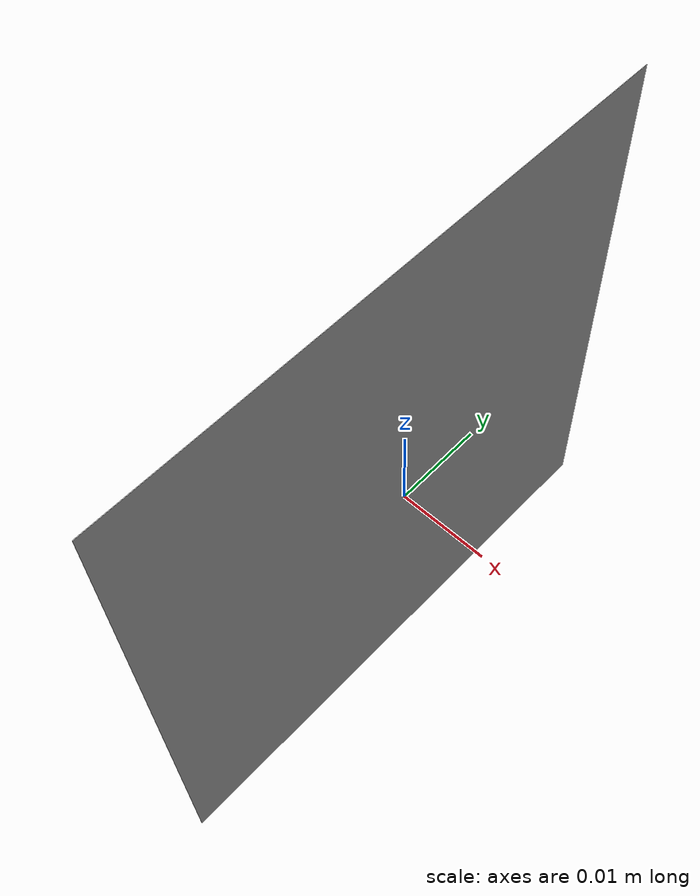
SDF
<?xml version="1.0"?>
<sdf version="1.6">

  <model name="aruco_10">

    <static>true</static>

    <link name="aruco_link">

      <!--
        Caja fina para dar presencia física al marcador.
        X = espesor
        Y = ancho
        Z = alto
      -->
      <collision name="collision">
        <geometry>
          <box>
            <size>0.002 0.064 0.064</size>
          </box>
        </geometry>
      </collision>

      <!--
        El plano se orienta verticalmente.

        Normal hacia -X, de modo que si el marcador
        está delante del robot (+X), mira hacia el robot.
      -->
      <visual name="aruco_visual">

        <pose>
          -0.001 0 0
          1.57079632679 0 -1.57079632679
        </pose>

        <cast_shadows>false</cast_shadows>

        <geometry>
          <plane>
            <normal>0 0 1</normal>
            <size>0.064 0.064</size>
          </plane>
        </geometry>

        <material>
          <script>

            <uri>
              model://aruco_10/materials/scripts
            </uri>

            <uri>
              model://aruco_10/materials/textures
            </uri>

            <name>
              Aruco10/Marker
            </name>

          </script>
        </material>

      </visual>

    </link>

  </model>

</sdf>
